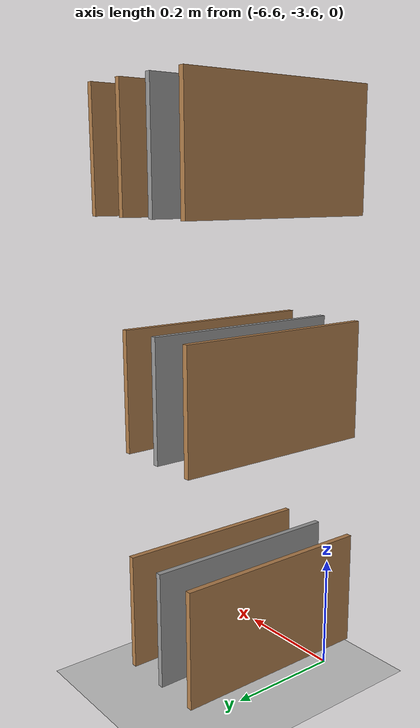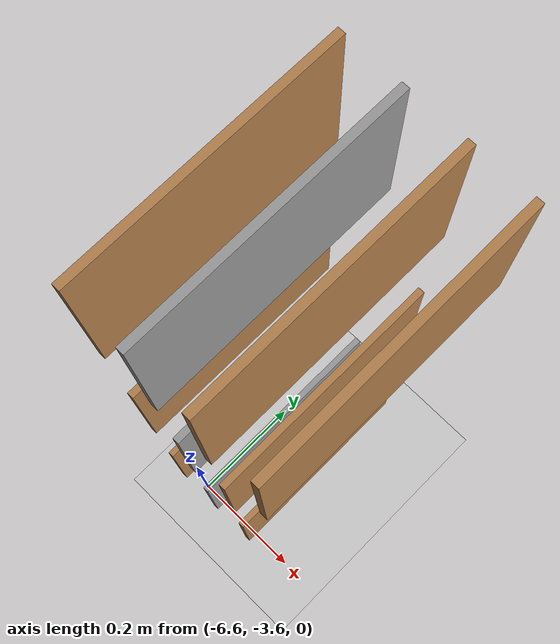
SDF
<sdf version="1.7">
 <world name="default">
  <model name="ground_plane">
   <static>1</static>
   <link name="link">
    <collision name="collision">
     <geometry><plane><normal>0 0 1</normal><size>100 100</size></plane></geometry>
     <surface><friction><ode><mu>1</mu><mu2>1</mu2></ode></friction></surface>
    </collision>
    <visual name="visual">
     <cast_shadows>0</cast_shadows>
     <geometry><plane><normal>0 0 1</normal><size>100 100</size></plane></geometry>
     <material>
      <script><uri>file://media/materials/scripts/gazebo.material</uri><name>Gazebo/Grey</name></script>
     </material>
    </visual>
    <velocity_decay><linear>0</linear><angular>0</angular></velocity_decay>
   </link>
  </model>
  <model name="bookshelf_0">
   <link name="link_6">
    <inertial>
     <mass>1</mass>
     <inertia>
      <ixx>0.166667</ixx>
      <ixy>0</ixy>
      <ixz>0</ixz>
      <iyy>0.166667</iyy>
      <iyz>0</iyz>
      <izz>0.166667</izz>
     </inertia>
    </inertial>
    <pose>0.02 -0.195 0.907998 0 0 -1.57</pose>
    <visual name="visual">
     <geometry><box><size>0.35 0.01 0.2</size></box></geometry>
     <material>
      <script><uri>file://media/materials/scripts/gazebo.material</uri><name>Gazebo/Wood</name></script>
      <shader type="pixel"/>
     </material>
    </visual>
    <visual name="ModelPreview_3::link_1::visual_1">
     <geometry><box><size>0.35 0.01 0.2</size></box></geometry>
     <material>
      <lighting>1</lighting>
      <script><uri>file://media/materials/scripts/gazebo.material</uri><name>Gazebo/Grey</name></script>
      <shader type="pixel"><normal_map>__default__</normal_map></shader>
      <ambient>0.3 0.3 0.3 1</ambient>
      <diffuse>0.7 0.7 0.7 1</diffuse>
      <specular>0.01 0.01 0.01 1</specular>
      <emissive>0 0 0 1</emissive>
     </material>
    </visual>
    <collision name="collision">
     <geometry><box><size>0.35 0.01 0.2</size></box></geometry>
     <surface>
      <friction>
       <ode><mu>1</mu><mu2>1</mu2><fdir1>0 0 0</fdir1><slip1>0</slip1><slip2>0</slip2></ode>
       <torsional>
        <coefficient>1</coefficient>
        <patch_radius>0</patch_radius>
        <surface_radius>0</surface_radius>
        <use_patch_radius>1</use_patch_radius>
        <ode><slip>0</slip></ode>
       </torsional>
      </friction>
      <bounce><restitution_coefficient>0</restitution_coefficient><threshold>1e+06</threshold></bounce>
      <contact>
       <collide_without_contact>0</collide_without_contact>
       <collide_without_contact_bitmask>1</collide_without_contact_bitmask>
       <collide_bitmask>1</collide_bitmask>
       <ode>
        <soft_cfm>0</soft_cfm>
        <soft_erp>0.2</soft_erp>
        <kp>1e+13</kp>
        <kd>1</kd>
        <max_vel>0.01</max_vel>
        <min_depth>0</min_depth>
       </ode>
       <bullet>
        <split_impulse>1</split_impulse>
        <split_impulse_penetration_threshold>-0.01</split_impulse_penetration_threshold>
        <soft_cfm>0</soft_cfm>
        <soft_erp>0.2</soft_erp>
        <kp>1e+13</kp>
        <kd>1</kd>
       </bullet>
      </contact>
     </surface>
    </collision>
   </link>
   <link name="link_7">
    <inertial>
     <mass>1</mass>
     <inertia>
      <ixx>0.166667</ixx>
      <ixy>0</ixy>
      <ixz>0</ixz>
      <iyy>0.166667</iyy>
      <iyz>0</iyz>
      <izz>0.166667</izz>
     </inertia>
    </inertial>
    <pose>0.1 -0.195 0.907998 0 0 -1.57</pose>
    <visual name="visual">
     <geometry><box><size>0.35 0.01 0.2</size></box></geometry>
     <material>
      <lighting>1</lighting>
      <script><uri>file://media/materials/scripts/gazebo.material</uri><name>Gazebo/Grey</name></script>
      <shader type="pixel"><normal_map>__default__</normal_map></shader>
      <ambient>0.3 0.3 0.3 1</ambient>
      <diffuse>0.7 0.7 0.7 1</diffuse>
      <specular>0.01 0.01 0.01 1</specular>
      <emissive>0 0 0 1</emissive>
     </material>
    </visual>
    <visual name="ModelPreview_3::link_1::visual_1">
     <geometry><box><size>0.35 0.01 0.2</size></box></geometry>
     <material>
      <script><uri>file://media/materials/scripts/gazebo.material</uri><name>Gazebo/Wood</name></script>
      <shader type="pixel"/>
     </material>
    </visual>
    <collision name="collision">
     <geometry><box><size>0.35 0.01 0.2</size></box></geometry>
     <surface>
      <friction>
       <ode><mu>1</mu><mu2>1</mu2><fdir1>0 0 0</fdir1><slip1>0</slip1><slip2>0</slip2></ode>
       <torsional>
        <coefficient>1</coefficient>
        <patch_radius>0</patch_radius>
        <surface_radius>0</surface_radius>
        <use_patch_radius>1</use_patch_radius>
        <ode><slip>0</slip></ode>
       </torsional>
      </friction>
      <bounce><restitution_coefficient>0</restitution_coefficient><threshold>1e+06</threshold></bounce>
      <contact>
       <collide_without_contact>0</collide_without_contact>
       <collide_without_contact_bitmask>1</collide_without_contact_bitmask>
       <collide_bitmask>1</collide_bitmask>
       <ode>
        <soft_cfm>0</soft_cfm>
        <soft_erp>0.2</soft_erp>
        <kp>1e+13</kp>
        <kd>1</kd>
        <max_vel>0.01</max_vel>
        <min_depth>0</min_depth>
       </ode>
       <bullet>
        <split_impulse>1</split_impulse>
        <split_impulse_penetration_threshold>-0.01</split_impulse_penetration_threshold>
        <soft_cfm>0</soft_cfm>
        <soft_erp>0.2</soft_erp>
        <kp>1e+13</kp>
        <kd>1</kd>
       </bullet>
      </contact>
     </surface>
    </collision>
   </link>
   <link name="link_8">
    <inertial>
     <mass>1</mass>
     <inertia>
      <ixx>0.166667</ixx>
      <ixy>0</ixy>
      <ixz>0</ixz>
      <iyy>0.166667</iyy>
      <iyz>0</iyz>
      <izz>0.166667</izz>
     </inertia>
    </inertial>
    <pose>0.18 -0.195 0.907998 0 0 -1.57</pose>
    <visual name="visual">
     <geometry><box><size>0.35 0.01 0.2</size></box></geometry>
     <material>
      <script><uri>file://media/materials/scripts/gazebo.material</uri><name>Gazebo/Wood</name></script>
      <shader type="pixel"/>
     </material>
    </visual>
    <visual name="ModelPreview_3::link_1::visual_1">
     <geometry><box><size>0.35 0.01 0.2</size></box></geometry>
     <material>
      <lighting>1</lighting>
      <script><uri>file://media/materials/scripts/gazebo.material</uri><name>Gazebo/Grey</name></script>
      <shader type="pixel"><normal_map>__default__</normal_map></shader>
      <ambient>0.3 0.3 0.3 1</ambient>
      <diffuse>0.7 0.7 0.7 1</diffuse>
      <specular>0.01 0.01 0.01 1</specular>
      <emissive>0 0 0 1</emissive>
     </material>
    </visual>
    <collision name="collision">
     <geometry><box><size>0.35 0.01 0.2</size></box></geometry>
     <surface>
      <friction>
       <ode><mu>1</mu><mu2>1</mu2><fdir1>0 0 0</fdir1><slip1>0</slip1><slip2>0</slip2></ode>
       <torsional>
        <coefficient>1</coefficient>
        <patch_radius>0</patch_radius>
        <surface_radius>0</surface_radius>
        <use_patch_radius>1</use_patch_radius>
        <ode><slip>0</slip></ode>
       </torsional>
      </friction>
      <bounce><restitution_coefficient>0</restitution_coefficient><threshold>1e+06</threshold></bounce>
      <contact>
       <collide_without_contact>0</collide_without_contact>
       <collide_without_contact_bitmask>1</collide_without_contact_bitmask>
       <collide_bitmask>1</collide_bitmask>
       <ode>
        <soft_cfm>0</soft_cfm>
        <soft_erp>0.2</soft_erp>
        <kp>1e+13</kp>
        <kd>1</kd>
        <max_vel>0.01</max_vel>
        <min_depth>0</min_depth>
       </ode>
       <bullet>
        <split_impulse>1</split_impulse>
        <split_impulse_penetration_threshold>-0.01</split_impulse_penetration_threshold>
        <soft_cfm>0</soft_cfm>
        <soft_erp>0.2</soft_erp>
        <kp>1e+13</kp>
        <kd>1</kd>
       </bullet>
      </contact>
     </surface>
    </collision>
   </link>
   <link name="link_9">
    <inertial>
     <mass>1</mass>
     <inertia>
      <ixx>0.166667</ixx>
      <ixy>0</ixy>
      <ixz>0</ixz>
      <iyy>0.166667</iyy>
      <iyz>0</iyz>
      <izz>0.166667</izz>
     </inertia>
    </inertial>
    <pose>0.26 -0.195 0.907998 0 0 -1.57</pose>
    <visual name="ModelPreview_3::link_1::visual_1">
     <geometry><box><size>0.35 0.01 0.2</size></box></geometry>
     <material>
      <script><uri>file://media/materials/scripts/gazebo.material</uri><name>Gazebo/Wood</name></script>
      <shader type="pixel"/>
     </material>
    </visual>
    <visual name="visual">
     <geometry><box><size>0.35 0.01 0.2</size></box></geometry>
     <material>
      <lighting>1</lighting>
      <script><uri>file://media/materials/scripts/gazebo.material</uri><name>Gazebo/Grey</name></script>
      <shader type="pixel"><normal_map>__default__</normal_map></shader>
      <ambient>0.3 0.3 0.3 1</ambient>
      <diffuse>0.7 0.7 0.7 1</diffuse>
      <specular>0.01 0.01 0.01 1</specular>
      <emissive>0 0 0 1</emissive>
     </material>
    </visual>
    <collision name="collision">
     <geometry><box><size>0.35 0.01 0.2</size></box></geometry>
     <surface>
      <friction>
       <ode><mu>1</mu><mu2>1</mu2><fdir1>0 0 0</fdir1><slip1>0</slip1><slip2>0</slip2></ode>
       <torsional>
        <coefficient>1</coefficient>
        <patch_radius>0</patch_radius>
        <surface_radius>0</surface_radius>
        <use_patch_radius>1</use_patch_radius>
        <ode><slip>0</slip></ode>
       </torsional>
      </friction>
      <bounce><restitution_coefficient>0</restitution_coefficient><threshold>1e+06</threshold></bounce>
      <contact>
       <collide_without_contact>0</collide_without_contact>
       <collide_without_contact_bitmask>1</collide_without_contact_bitmask>
       <collide_bitmask>1</collide_bitmask>
       <ode>
        <soft_cfm>0</soft_cfm>
        <soft_erp>0.2</soft_erp>
        <kp>1e+13</kp>
        <kd>1</kd>
        <max_vel>0.01</max_vel>
        <min_depth>0</min_depth>
       </ode>
       <bullet>
        <split_impulse>1</split_impulse>
        <split_impulse_penetration_threshold>-0.01</split_impulse_penetration_threshold>
        <soft_cfm>0</soft_cfm>
        <soft_erp>0.2</soft_erp>
        <kp>1e+13</kp>
        <kd>1</kd>
       </bullet>
      </contact>
     </surface>
    </collision>
   </link>
   <link name="link_2_6">
    <inertial>
     <mass>1</mass>
     <inertia>
      <ixx>0.166667</ixx>
      <ixy>0</ixy>
      <ixz>0</ixz>
      <iyy>0.166667</iyy>
      <iyz>0</iyz>
      <izz>0.166667</izz>
     </inertia>
    </inertial>
    <pose>0.02 -0.195 0.5379 0 0 -1.57</pose>
    <visual name="visual">
     <geometry><box><size>0.35 0.01 0.2</size></box></geometry>
     <material>
      <script><uri>file://media/materials/scripts/gazebo.material</uri><name>Gazebo/Wood</name></script>
      <shader type="pixel"/>
     </material>
    </visual>
    <visual name="ModelPreview_3::link_1::visual_1">
     <geometry><box><size>0.35 0.01 0.2</size></box></geometry>
     <material>
      <lighting>1</lighting>
      <script><uri>file://media/materials/scripts/gazebo.material</uri><name>Gazebo/Grey</name></script>
      <shader type="pixel"><normal_map>__default__</normal_map></shader>
      <ambient>0.3 0.3 0.3 1</ambient>
      <diffuse>0.7 0.7 0.7 1</diffuse>
      <specular>0.01 0.01 0.01 1</specular>
      <emissive>0 0 0 1</emissive>
     </material>
    </visual>
    <collision name="collision">
     <geometry><box><size>0.35 0.01 0.2</size></box></geometry>
     <surface>
      <friction>
       <ode><mu>1</mu><mu2>1</mu2><fdir1>0 0 0</fdir1><slip1>0</slip1><slip2>0</slip2></ode>
       <torsional>
        <coefficient>1</coefficient>
        <patch_radius>0</patch_radius>
        <surface_radius>0</surface_radius>
        <use_patch_radius>1</use_patch_radius>
        <ode><slip>0</slip></ode>
       </torsional>
      </friction>
      <bounce><restitution_coefficient>0</restitution_coefficient><threshold>1e+06</threshold></bounce>
      <contact>
       <collide_without_contact>0</collide_without_contact>
       <collide_without_contact_bitmask>1</collide_without_contact_bitmask>
       <collide_bitmask>1</collide_bitmask>
       <ode>
        <soft_cfm>0</soft_cfm>
        <soft_erp>0.2</soft_erp>
        <kp>1e+13</kp>
        <kd>1</kd>
        <max_vel>0.01</max_vel>
        <min_depth>0</min_depth>
       </ode>
       <bullet>
        <split_impulse>1</split_impulse>
        <split_impulse_penetration_threshold>-0.01</split_impulse_penetration_threshold>
        <soft_cfm>0</soft_cfm>
        <soft_erp>0.2</soft_erp>
        <kp>1e+13</kp>
        <kd>1</kd>
       </bullet>
      </contact>
     </surface>
    </collision>
   </link>
   <link name="link_2_7">
    <inertial>
     <mass>1</mass>
     <inertia>
      <ixx>0.166667</ixx>
      <ixy>0</ixy>
      <ixz>0</ixz>
      <iyy>0.166667</iyy>
      <iyz>0</iyz>
      <izz>0.166667</izz>
     </inertia>
    </inertial>
    <pose>0.1 -0.195 0.5379 0 0 -1.57</pose>
    <visual name="visual">
     <geometry><box><size>0.35 0.01 0.2</size></box></geometry>
     <material>
      <lighting>1</lighting>
      <script><uri>file://media/materials/scripts/gazebo.material</uri><name>Gazebo/Grey</name></script>
      <shader type="pixel"><normal_map>__default__</normal_map></shader>
      <ambient>0.3 0.3 0.3 1</ambient>
      <diffuse>0.7 0.7 0.7 1</diffuse>
      <specular>0.01 0.01 0.01 1</specular>
      <emissive>0 0 0 1</emissive>
     </material>
    </visual>
    <visual name="ModelPreview_3::link_1::visual_1">
     <geometry><box><size>0.35 0.01 0.2</size></box></geometry>
     <material>
      <script><uri>file://media/materials/scripts/gazebo.material</uri><name>Gazebo/Wood</name></script>
      <shader type="pixel"/>
     </material>
    </visual>
    <collision name="collision">
     <geometry><box><size>0.35 0.01 0.2</size></box></geometry>
     <surface>
      <friction>
       <ode><mu>1</mu><mu2>1</mu2><fdir1>0 0 0</fdir1><slip1>0</slip1><slip2>0</slip2></ode>
       <torsional>
        <coefficient>1</coefficient>
        <patch_radius>0</patch_radius>
        <surface_radius>0</surface_radius>
        <use_patch_radius>1</use_patch_radius>
        <ode><slip>0</slip></ode>
       </torsional>
      </friction>
      <bounce><restitution_coefficient>0</restitution_coefficient><threshold>1e+06</threshold></bounce>
      <contact>
       <collide_without_contact>0</collide_without_contact>
       <collide_without_contact_bitmask>1</collide_without_contact_bitmask>
       <collide_bitmask>1</collide_bitmask>
       <ode>
        <soft_cfm>0</soft_cfm>
        <soft_erp>0.2</soft_erp>
        <kp>1e+13</kp>
        <kd>1</kd>
        <max_vel>0.01</max_vel>
        <min_depth>0</min_depth>
       </ode>
       <bullet>
        <split_impulse>1</split_impulse>
        <split_impulse_penetration_threshold>-0.01</split_impulse_penetration_threshold>
        <soft_cfm>0</soft_cfm>
        <soft_erp>0.2</soft_erp>
        <kp>1e+13</kp>
        <kd>1</kd>
       </bullet>
      </contact>
     </surface>
    </collision>
   </link>
   <link name="link_2_8">
    <inertial>
     <mass>1</mass>
     <inertia>
      <ixx>0.166667</ixx>
      <ixy>0</ixy>
      <ixz>0</ixz>
      <iyy>0.166667</iyy>
      <iyz>0</iyz>
      <izz>0.166667</izz>
     </inertia>
    </inertial>
    <pose>0.18 -0.195 0.5379 0 0 -1.57</pose>
    <visual name="visual">
     <geometry><box><size>0.35 0.01 0.2</size></box></geometry>
     <material>
      <script><uri>file://media/materials/scripts/gazebo.material</uri><name>Gazebo/Wood</name></script>
      <shader type="pixel"/>
     </material>
    </visual>
    <visual name="ModelPreview_3::link_1::visual_1">
     <geometry><box><size>0.35 0.01 0.2</size></box></geometry>
     <material>
      <lighting>1</lighting>
      <script><uri>file://media/materials/scripts/gazebo.material</uri><name>Gazebo/Grey</name></script>
      <shader type="pixel"><normal_map>__default__</normal_map></shader>
      <ambient>0.3 0.3 0.3 1</ambient>
      <diffuse>0.7 0.7 0.7 1</diffuse>
      <specular>0.01 0.01 0.01 1</specular>
      <emissive>0 0 0 1</emissive>
     </material>
    </visual>
    <collision name="collision">
     <geometry><box><size>0.35 0.01 0.2</size></box></geometry>
     <surface>
      <friction>
       <ode><mu>1</mu><mu2>1</mu2><fdir1>0 0 0</fdir1><slip1>0</slip1><slip2>0</slip2></ode>
       <torsional>
        <coefficient>1</coefficient>
        <patch_radius>0</patch_radius>
        <surface_radius>0</surface_radius>
        <use_patch_radius>1</use_patch_radius>
        <ode><slip>0</slip></ode>
       </torsional>
      </friction>
      <bounce><restitution_coefficient>0</restitution_coefficient><threshold>1e+06</threshold></bounce>
      <contact>
       <collide_without_contact>0</collide_without_contact>
       <collide_without_contact_bitmask>1</collide_without_contact_bitmask>
       <collide_bitmask>1</collide_bitmask>
       <ode>
        <soft_cfm>0</soft_cfm>
        <soft_erp>0.2</soft_erp>
        <kp>1e+13</kp>
        <kd>1</kd>
        <max_vel>0.01</max_vel>
        <min_depth>0</min_depth>
       </ode>
       <bullet>
        <split_impulse>1</split_impulse>
        <split_impulse_penetration_threshold>-0.01</split_impulse_penetration_threshold>
        <soft_cfm>0</soft_cfm>
        <soft_erp>0.2</soft_erp>
        <kp>1e+13</kp>
        <kd>1</kd>
       </bullet>
      </contact>
     </surface>
    </collision>
   </link>
   <link name="link_3_6">
    <inertial>
     <mass>1</mass>
     <inertia>
      <ixx>0.166667</ixx>
      <ixy>0</ixy>
      <ixz>0</ixz>
      <iyy>0.166667</iyy>
      <iyz>0</iyz>
      <izz>0.166667</izz>
     </inertia>
    </inertial>
    <pose>0.02 -0.195 0.158 0 0 -1.57</pose>
    <visual name="visual">
     <geometry><box><size>0.35 0.01 0.2</size></box></geometry>
     <material>
      <script><uri>file://media/materials/scripts/gazebo.material</uri><name>Gazebo/Wood</name></script>
      <shader type="pixel"/>
     </material>
    </visual>
    <visual name="ModelPreview_3::link_1::visual_1">
     <geometry><box><size>0.35 0.01 0.2</size></box></geometry>
     <material>
      <lighting>1</lighting>
      <script><uri>file://media/materials/scripts/gazebo.material</uri><name>Gazebo/Grey</name></script>
      <shader type="pixel"><normal_map>__default__</normal_map></shader>
      <ambient>0.3 0.3 0.3 1</ambient>
      <diffuse>0.7 0.7 0.7 1</diffuse>
      <specular>0.01 0.01 0.01 1</specular>
      <emissive>0 0 0 1</emissive>
     </material>
    </visual>
    <collision name="collision">
     <geometry><box><size>0.35 0.01 0.2</size></box></geometry>
     <surface>
      <friction>
       <ode><mu>1</mu><mu2>1</mu2><fdir1>0 0 0</fdir1><slip1>0</slip1><slip2>0</slip2></ode>
       <torsional>
        <coefficient>1</coefficient>
        <patch_radius>0</patch_radius>
        <surface_radius>0</surface_radius>
        <use_patch_radius>1</use_patch_radius>
        <ode><slip>0</slip></ode>
       </torsional>
      </friction>
      <bounce><restitution_coefficient>0</restitution_coefficient><threshold>1e+06</threshold></bounce>
      <contact>
       <collide_without_contact>0</collide_without_contact>
       <collide_without_contact_bitmask>1</collide_without_contact_bitmask>
       <collide_bitmask>1</collide_bitmask>
       <ode>
        <soft_cfm>0</soft_cfm>
        <soft_erp>0.2</soft_erp>
        <kp>1e+13</kp>
        <kd>1</kd>
        <max_vel>0.01</max_vel>
        <min_depth>0</min_depth>
       </ode>
       <bullet>
        <split_impulse>1</split_impulse>
        <split_impulse_penetration_threshold>-0.01</split_impulse_penetration_threshold>
        <soft_cfm>0</soft_cfm>
        <soft_erp>0.2</soft_erp>
        <kp>1e+13</kp>
        <kd>1</kd>
       </bullet>
      </contact>
     </surface>
    </collision>
   </link>
   <link name="link_3_7">
    <inertial>
     <mass>1</mass>
     <inertia>
      <ixx>0.166667</ixx>
      <ixy>0</ixy>
      <ixz>0</ixz>
      <iyy>0.166667</iyy>
      <iyz>0</iyz>
      <izz>0.166667</izz>
     </inertia>
    </inertial>
    <pose>0.1 -0.195 0.158 0 0 -1.57</pose>
    <visual name="visual">
     <geometry><box><size>0.35 0.01 0.2</size></box></geometry>
     <material>
      <lighting>1</lighting>
      <script><uri>file://media/materials/scripts/gazebo.material</uri><name>Gazebo/Grey</name></script>
      <shader type="pixel"><normal_map>__default__</normal_map></shader>
      <ambient>0.3 0.3 0.3 1</ambient>
      <diffuse>0.7 0.7 0.7 1</diffuse>
      <specular>0.01 0.01 0.01 1</specular>
      <emissive>0 0 0 1</emissive>
     </material>
    </visual>
    <visual name="ModelPreview_3::link_1::visual_1">
     <geometry><box><size>0.35 0.01 0.2</size></box></geometry>
     <material>
      <script><uri>file://media/materials/scripts/gazebo.material</uri><name>Gazebo/Wood</name></script>
      <shader type="pixel"/>
     </material>
    </visual>
    <collision name="collision">
     <geometry><box><size>0.35 0.01 0.2</size></box></geometry>
     <surface>
      <friction>
       <ode><mu>1</mu><mu2>1</mu2><fdir1>0 0 0</fdir1><slip1>0</slip1><slip2>0</slip2></ode>
       <torsional>
        <coefficient>1</coefficient>
        <patch_radius>0</patch_radius>
        <surface_radius>0</surface_radius>
        <use_patch_radius>1</use_patch_radius>
        <ode><slip>0</slip></ode>
       </torsional>
      </friction>
      <bounce><restitution_coefficient>0</restitution_coefficient><threshold>1e+06</threshold></bounce>
      <contact>
       <collide_without_contact>0</collide_without_contact>
       <collide_without_contact_bitmask>1</collide_without_contact_bitmask>
       <collide_bitmask>1</collide_bitmask>
       <ode>
        <soft_cfm>0</soft_cfm>
        <soft_erp>0.2</soft_erp>
        <kp>1e+13</kp>
        <kd>1</kd>
        <max_vel>0.01</max_vel>
        <min_depth>0</min_depth>
       </ode>
       <bullet>
        <split_impulse>1</split_impulse>
        <split_impulse_penetration_threshold>-0.01</split_impulse_penetration_threshold>
        <soft_cfm>0</soft_cfm>
        <soft_erp>0.2</soft_erp>
        <kp>1e+13</kp>
        <kd>1</kd>
       </bullet>
      </contact>
     </surface>
    </collision>
   </link>
   <link name="link_3_8">
    <inertial>
     <mass>1</mass>
     <inertia>
      <ixx>0.166667</ixx>
      <ixy>0</ixy>
      <ixz>0</ixz>
      <iyy>0.166667</iyy>
      <iyz>0</iyz>
      <izz>0.166667</izz>
     </inertia>
    </inertial>
    <pose>0.18 -0.195 0.158 0 0 -1.57</pose>
    <visual name="visual">
     <geometry><box><size>0.35 0.01 0.2</size></box></geometry>
     <material>
      <script><uri>file://media/materials/scripts/gazebo.material</uri><name>Gazebo/Wood</name></script>
      <shader type="pixel"/>
     </material>
    </visual>
    <visual name="ModelPreview_3::link_1::visual_1">
     <geometry><box><size>0.35 0.01 0.2</size></box></geometry>
     <material>
      <lighting>1</lighting>
      <script><uri>file://media/materials/scripts/gazebo.material</uri><name>Gazebo/Grey</name></script>
      <shader type="pixel"><normal_map>__default__</normal_map></shader>
      <ambient>0.3 0.3 0.3 1</ambient>
      <diffuse>0.7 0.7 0.7 1</diffuse>
      <specular>0.01 0.01 0.01 1</specular>
      <emissive>0 0 0 1</emissive>
     </material>
    </visual>
    <collision name="collision">
     <geometry><box><size>0.35 0.01 0.2</size></box></geometry>
     <surface>
      <friction>
       <ode><mu>1</mu><mu2>1</mu2><fdir1>0 0 0</fdir1><slip1>0</slip1><slip2>0</slip2></ode>
       <torsional>
        <coefficient>1</coefficient>
        <patch_radius>0</patch_radius>
        <surface_radius>0</surface_radius>
        <use_patch_radius>1</use_patch_radius>
        <ode><slip>0</slip></ode>
       </torsional>
      </friction>
      <bounce><restitution_coefficient>0</restitution_coefficient><threshold>1e+06</threshold></bounce>
      <contact>
       <collide_without_contact>0</collide_without_contact>
       <collide_without_contact_bitmask>1</collide_without_contact_bitmask>
       <collide_bitmask>1</collide_bitmask>
       <ode>
        <soft_cfm>0</soft_cfm>
        <soft_erp>0.2</soft_erp>
        <kp>1e+13</kp>
        <kd>1</kd>
        <max_vel>0.01</max_vel>
        <min_depth>0</min_depth>
       </ode>
       <bullet>
        <split_impulse>1</split_impulse>
        <split_impulse_penetration_threshold>-0.01</split_impulse_penetration_threshold>
        <soft_cfm>0</soft_cfm>
        <soft_erp>0.2</soft_erp>
        <kp>1e+13</kp>
        <kd>1</kd>
       </bullet>
      </contact>
     </surface>
    </collision>
   </link>
   <static>1</static>
   <pose>-6.65359 -3.24846 0 0 -0 0</pose>
  </model>
 </world>
</sdf>
